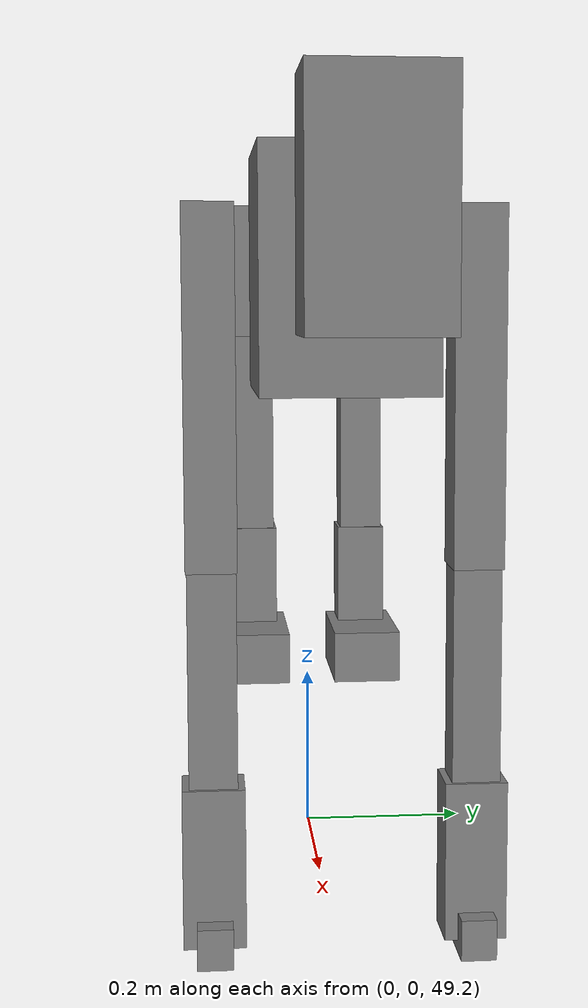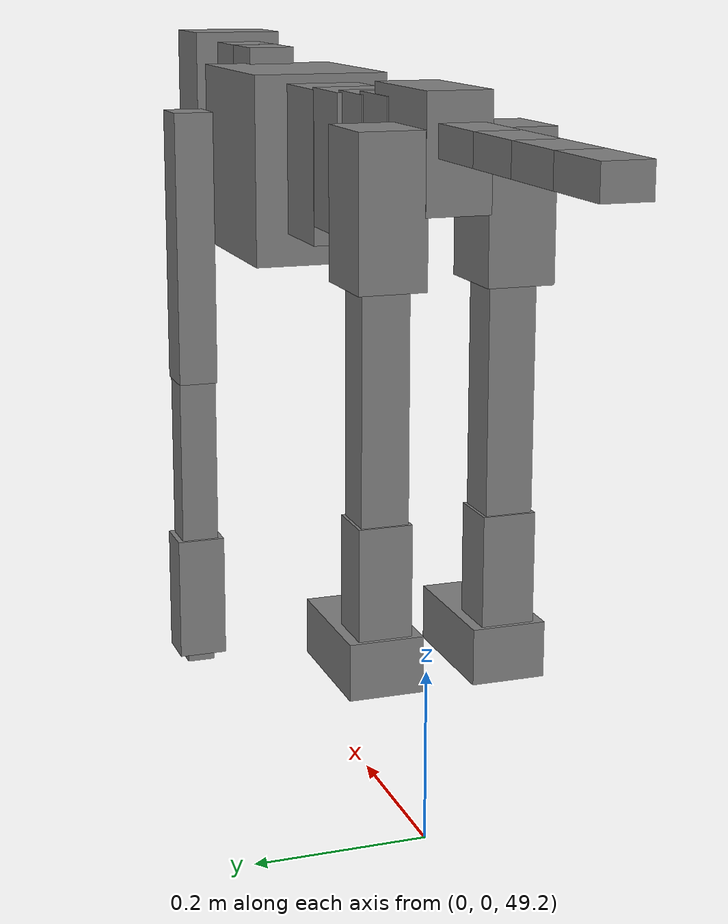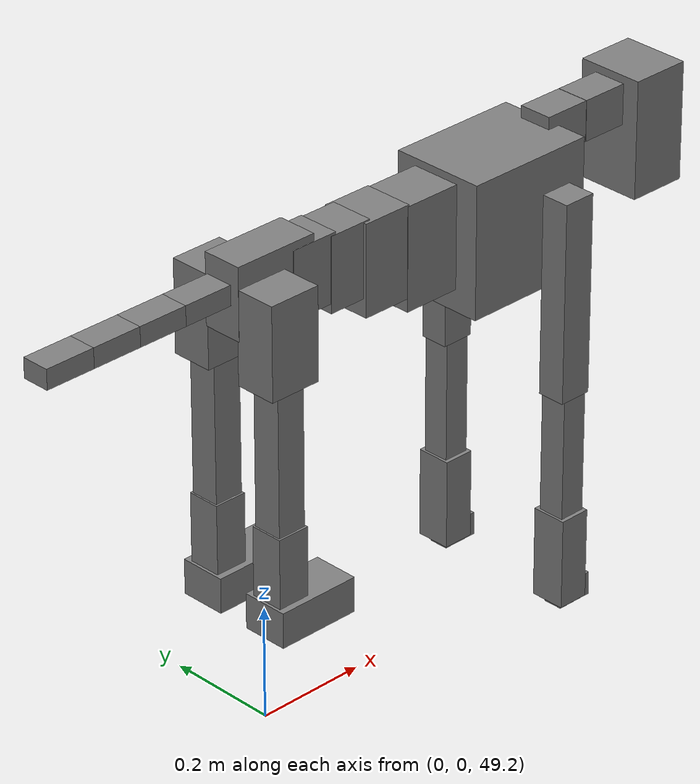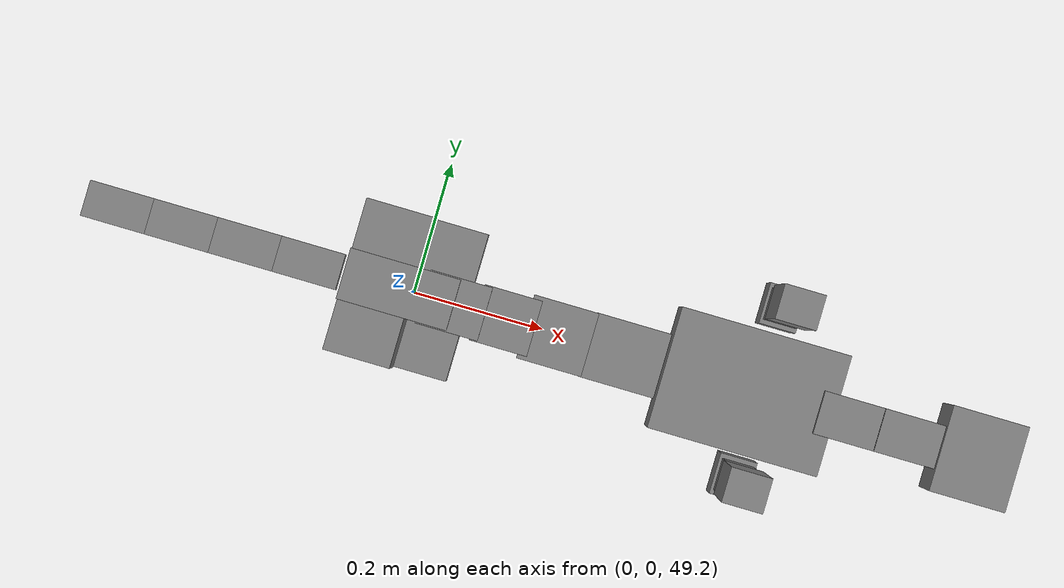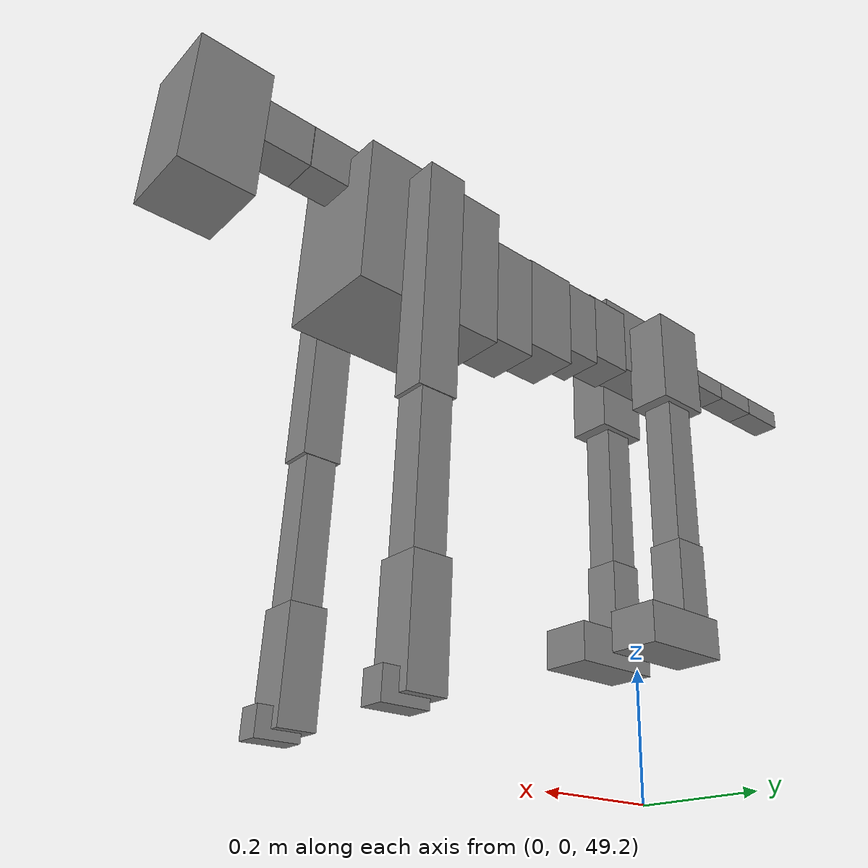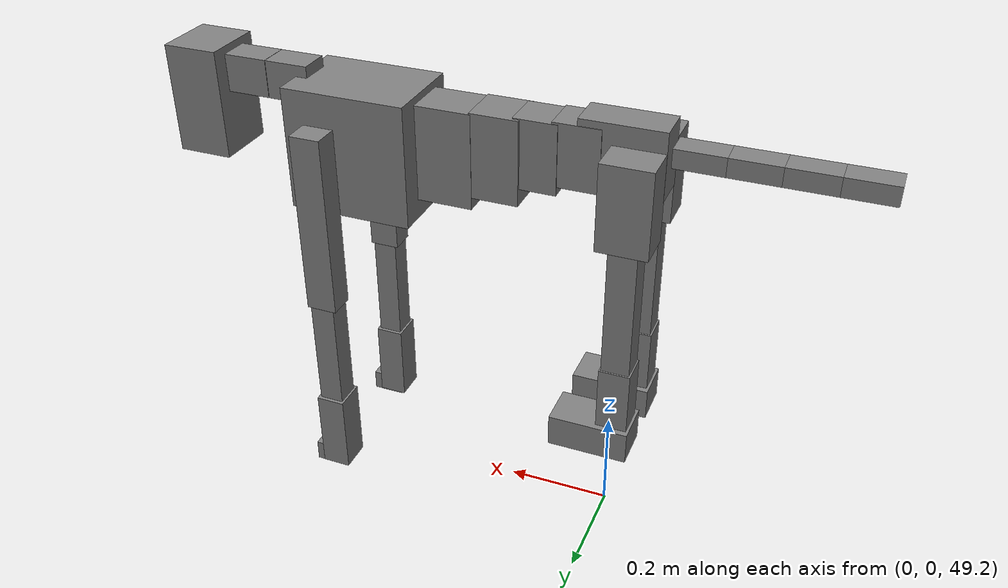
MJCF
<mujoco model="dog">

    <default>
        <joint armature="0.02" stiffness="1" damping="0.2" limited="true"/>
        <geom condim="3" friction="1 0.05 0.05" margin="0.01"/>
        <motor ctrllimited="true" ctrlrange="-1.0 1.0" forcelimited="true" gear="50"/>
    </default>

    <compiler inertiafromgeom="true" angle="radian"/>

    <option timestep="0.016" iterations="50" tolerance="1e-10" solver="Newton" jacobian="dense" cone="pyramidal"/>

    <size nconmax="20000" njmax="60000" nstack="5000000"/>
    <visual>
        <map force="0.1" zfar="30"/>
        <rgba haze="0.15 0.25 0.35 1"/>
        <quality shadowsize="2048"/>
        <global offwidth="800" offheight="800"/>
    </visual>

    <asset>
        <texture type="skybox" builtin="gradient" rgb1="0.3 0.5 0.7" rgb2="0 0 0" width="512" height="512"/>
        <texture name="texplane" type="2d" builtin="checker" rgb1=".2 .3 .4" rgb2=".1 0.15 0.2" width="512" height="512"
                 mark="cross" markrgb=".8 .8 .8"/>
        <texture name="texgeom" type="cube" builtin="flat" mark="cross" width="127" height="1278" rgb1="0.8 0.6 0.4"
                 rgb2="0.8 0.6 0.4" markrgb="1 1 1" random="0.01"/>

        <material name="matplane" reflectance="0.3" texture="texplane" texrepeat="1 1" texuniform="true"/>
        <material name="matgeom" texture="texgeom" texuniform="true" rgba="0.8 0.6 .4 1"/>
    </asset>

    <worldbody>
        <geom name="floor" pos="0 0 0" size="0 0 .25" type="plane" material="matplane" condim="3"/>

        <light directional="false" diffuse=".2 .2 .2" specular="0 0 0" pos="0 0 5" dir="0 0 -1" castshadow="false"/>
        <light mode="targetbodycom" target="torso" directional="false" diffuse=".8 .8 .8" specular="0.3 0.3 0.3"
               pos="0 0 4.0" dir="0 0 -1"/>

        <body name="root" pos="0 0 50">
            <freejoint name="root_1"/>
            <geom type="box" pos="0 0 -0.02" size="0.0774  0.0358  0.063" density="2030"/>

            <body name="spine1" pos="0.054 0 0">
                <joint name="spine1_y" axis="0 1 0" range="0 0.7" limited="true"/>
                <geom type="box" pos="0.02375 0 -0.03" size="0.04375  0.0375  0.05985" density="2030"/>

                <body name="spine2" pos="0.0612 0 0">
                    <joint name="spine2_y" axis="0 1 0" range="-0.15 0.15" limited="true"/>
                    <geom type="box" pos="0.03555  0  -0.04" size="0.04055  0.039  0.06615" density="2030"/>

                    <body name="spine3" pos="0.0730 0 0">
                        <joint name="spine3_y" axis="0 1 0" range="-0.15 0.15" limited="true"/>
                        <geom type="box" pos="0.03555  0  -0.057" size="0.04555  0.0445  0.081" density="2030"/>

                        <body name="spine4" pos="0.0780 0 0">
                            <joint name="spine4_y" axis="0 1 0" range="-0.15 0.15" limited="true"/>
                            <geom type="box" pos="0.05265  0  -0.07" size="0.05265  0.045  0.09135" density="2030"/>

                            <body name="torso" pos="0.1082 0 0">
                                <joint name="torso_y" axis="0 1 0" range="-0.15 0.15" limited="true"/>
                                <geom type="box" pos="0.11925  0  -0.085" size="0.11925  0.085  0.11745"
                                      density="2030"/>

                                <body name="neck1" pos="0.2160  0   0.0180">
                                    <joint name="neck1_y" axis="0 1 0" range="-1.2  -1" limited="true"/>
                                    <geom type="box" pos="0.0423  0  0" size="0.0423  0.03  0.036" density="2325"/>

                                    <body name="neck2" pos="0.0853  0  0">
                                        <joint name="neck2_y" axis="0 1 0" range="0.1  0" limited="true"/>
                                        <geom type="box" pos="0.0423  0  0" size="0.0423  0.03  0.036" density="2325"/>

                                        <body name="head" pos="0.0853  0  0">
                                            <joint name="head_y" axis="0 1 0" range="-0.3  -0.2" limited="true"/>
                                            <geom type="box" pos="0.0531  0  -0.055" size="0.0531  0.06  0.1044"
                                                  density="4030"/>

                                        </body>
                                    </body>
                                </body>

                                <body name="front_shoulder" pos="0.156  0   -0.0480">
                                    <joint name="front_shoulder_y" axis="0 1 0" range="-1 1.5" limited="true"/>
                                    <geom type="box" pos="0 0.13 -0.1496" size="0.0294  0.0251  0.1763" density="1158"/>
                                    <geom type="box" pos="0 -0.13 -0.1496" size="0.0294  0.0251  0.1763"
                                          density="1158"/>

                                    <body name="front_elbow" pos="0  0  -0.2992">
                                        <joint name="front_elbow_y" axis="0 1 0" range="-2 0" limited="true"/>
                                        <geom type="box" pos="0 0.13 -0.1273" size="0.0235  0.0240  0.1273"
                                              density="1081"/>
                                        <geom type="box" pos="0 -0.13 -0.1273" size="0.0235  0.0240  0.1273"
                                              density="1081"/>

                                        <body name="front_wrist" pos="0  0  -0.2545">
                                            <joint name="front_wrist_y" axis="0 1 0" range="-0.2 0" limited="true"/>
                                            <geom type="box" pos="0 0.13 -0.0673" size="0.0279  0.0310  0.0805"
                                                  density="1664"/>
                                            <geom type="box" pos="0 -0.13 -0.0673" size="0.0279  0.0310  0.0805"
                                                  density="1664"/>

                                            <body name="front_finger_end" pos="0  0  -0.1347">
                                                <joint name="front_finger_y" axis="0 1 0" range="-0.4 1"
                                                       limited="true"/>
                                                <geom type="box" pos="0.0177  0.13  -0.0057"
                                                      size="0.0325  0.0177  0.0207" density="1515"/>
                                                <geom type="box" pos="0.0177  -0.13  -0.0057"
                                                      size="0.0325  0.0177  0.0207" density="1515"/>

                                            </body>

                                        </body>
                                    </body>
                                </body>

                            </body>
                        </body>
                    </body>
                </body>
            </body>

            <body name="back_hip" pos="-0.03 0 -0.018">
                <joint name="back_hip_y" axis="0 1 0" range="-1.5 0.3" limited="true"/>
                <geom type="box" pos="0 0.07 -0.0589" size="0.0472  0.0370  0.0817" density="1154"/>
                <geom type="box" pos="0 -0.07 -0.0589" size="0.0472  0.0370  0.0817" density="1154"/>

                <body name="back_knee" pos="0  0  -0.1178">
                    <joint name="back_knee_y" axis="0 1 0" range="0 2.8" limited="true"/>
                    <geom type="box" pos="0 0.07 -0.1418" size="0.0265  0.0261  0.1574" density="1227"/>
                    <geom type="box" pos="0 -0.07 -0.1418" size="0.0265  0.0261  0.1574" density="1227"/>

                    <body name="back_ankle" pos="0  0  -0.2836">
                        <joint name="back_ankle_y" axis="0 1 0" range="-2.2 0" limited="true"/>
                        <geom type="box" pos="0 0.07 -0.0636" size="0.0295  0.0295  0.0749" density="1284"/>
                        <geom type="box" pos="0 -0.07 -0.0636" size="0.0295  0.0295  0.0749" density="1284"/>

                        <body name="back_toe_end" pos="0  0  -0.1272">
                            <joint name="back_toe_y" axis="0 1 0" range="-0.4 1" limited="true"/>
                            <geom type="box" pos="0.0413  0.07  -0.0163" size="0.0758  0.0413  0.0313" density="1515"/>
                            <geom type="box" pos="0.0413  -0.07  -0.0163" size="0.0758  0.0413  0.0313" density="1515"/>

                        </body>
                    </body>
                </body>
            </body>

            <body name="tail1" pos="-0.074 0 -0.006">
                <joint name="tail1_y" axis="0 1 0" range="-0.2 0.2" limited="true"/>
                <geom type="box" pos="-0.0536  0  0" size="0.045  0.025  0.0175" density="1587"/>

                <body name="tail2" pos="-0.09 0 0">
                    <joint name="tail2_y" axis="0 1 0" range="-0.2 0.2" limited="true"/>
                    <geom type="box" pos="-0.0536  0  0" size="0.045  0.025  0.0175" density="1587"/>

                    <body name="tail3" pos="-0.09 0 0">
                        <joint name="tail3_y" axis="0 1 0" range="-0.2 0.2" limited="true"/>
                        <geom type="box" pos="-0.0536  0  0" size="0.045  0.025  0.0175" density="1587"/>

                        <body name="tail4" pos="-0.09 0 0">
                            <joint name="tail4_y" axis="0 1 0" range="-0.2 0.2" limited="true"/>
                            <geom type="box" pos="-0.0536  0  0" size="0.045  0.025  0.0175" density="1587"/>

                        </body>
                    </body>
                </body>
            </body>
        </body>
    </worldbody>

    <actuator>
        <motor joint="spine1_y" forcerange="-150 150     "/>
        <motor joint="spine2_y" forcerange="-150 150     "/>
        <motor joint="spine3_y" forcerange="-150 150     "/>
        <motor joint="spine4_y" forcerange="-150 150     "/>
        <motor joint="torso_y" forcerange="-150 150     "/>
        <motor joint="neck1_y" forcerange="-100 100       "/>
        <motor joint="neck2_y" forcerange="-100 100       "/>
        <motor joint="head_y" forcerange="-150 150       "/>
        <motor joint="front_shoulder_y" forcerange="-143.96 123.39"/>
        <motor joint="front_elbow_y" forcerange="-128.31 146.45"/>
        <motor joint="front_wrist_y" forcerange="-148.53 99.52"/>
        <motor joint="front_finger_y" forcerange="-31.74 22.68"/>
        <motor joint="back_hip_y" forcerange="-301.13 391.98"/>
        <motor joint="back_knee_y" forcerange="-238.65 341.63"/>
        <motor joint="back_angle_y" forcerange="-221.65 149.99"/>
        <motor joint="back_toe_y" forcerange="-119.96 130.71"/>
        <motor joint="tail1_y" forcerange="-50 50     "/>
        <motor joint="tail2_y" forcerange="-50 50     "/>
        <motor joint="tail3_y" forcerange="-50 50     "/>
        <motor joint="tail4_y" forcerange="-50 50     "/>
    </actuator>
</mujoco>
